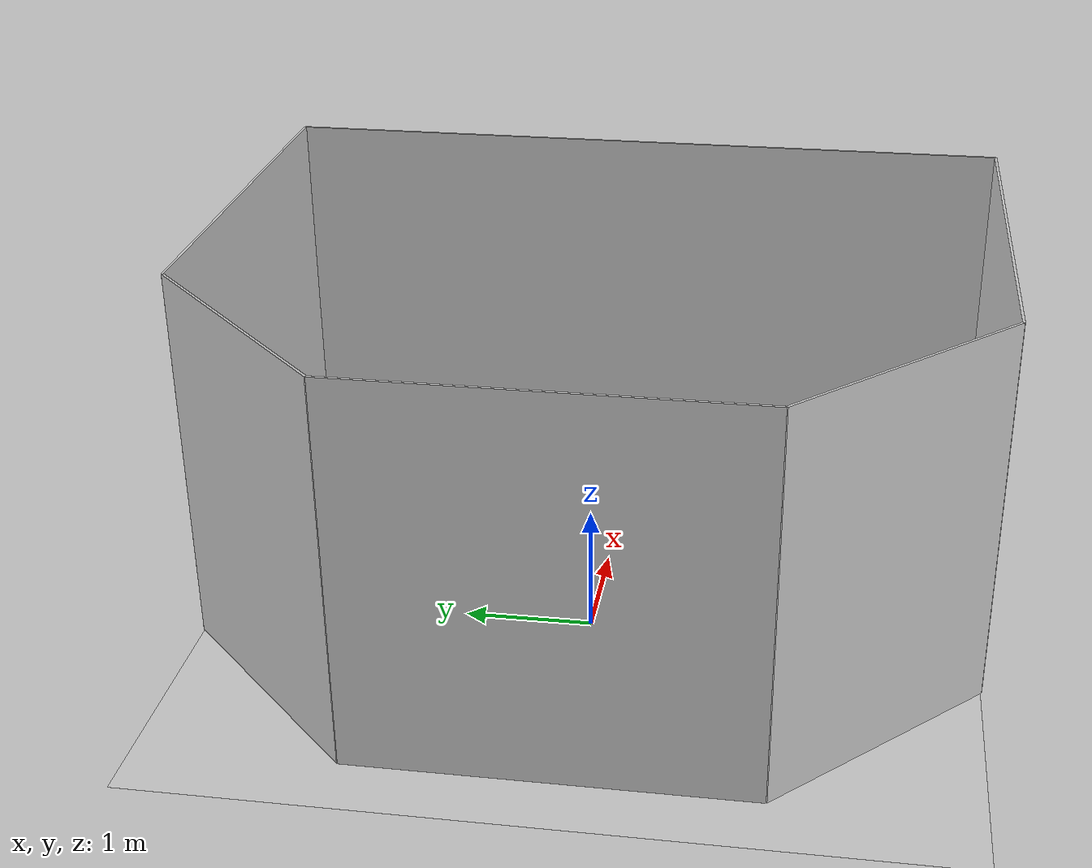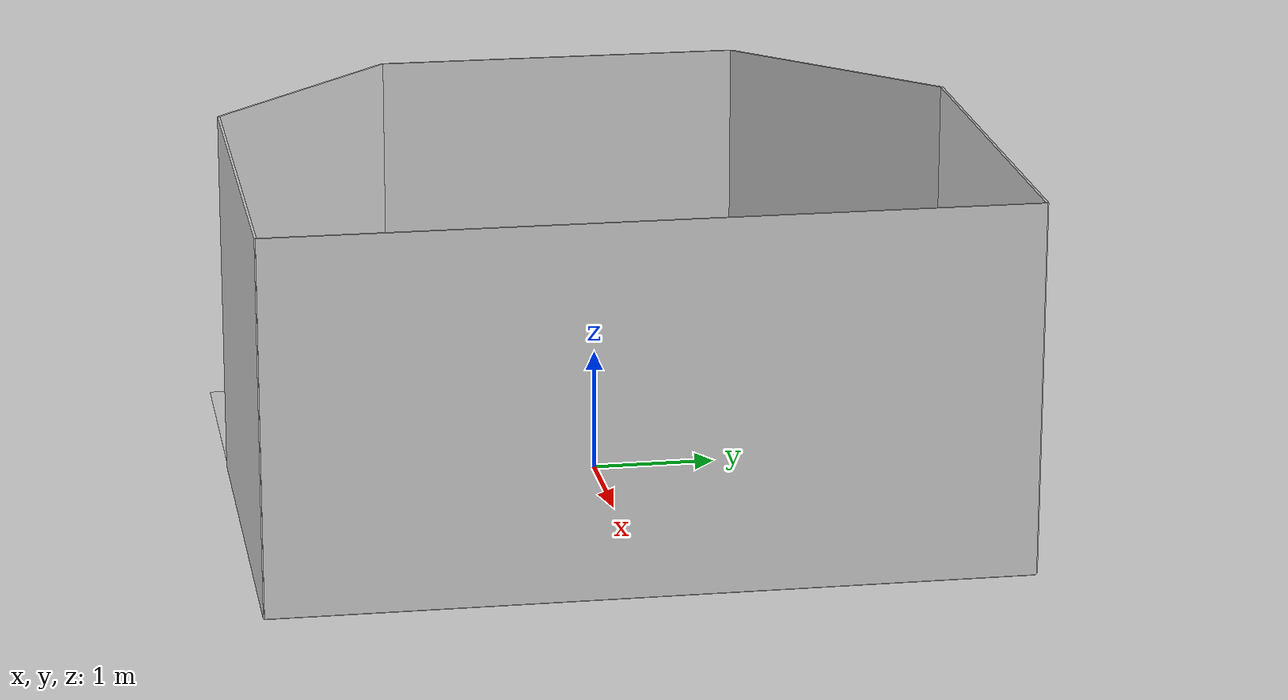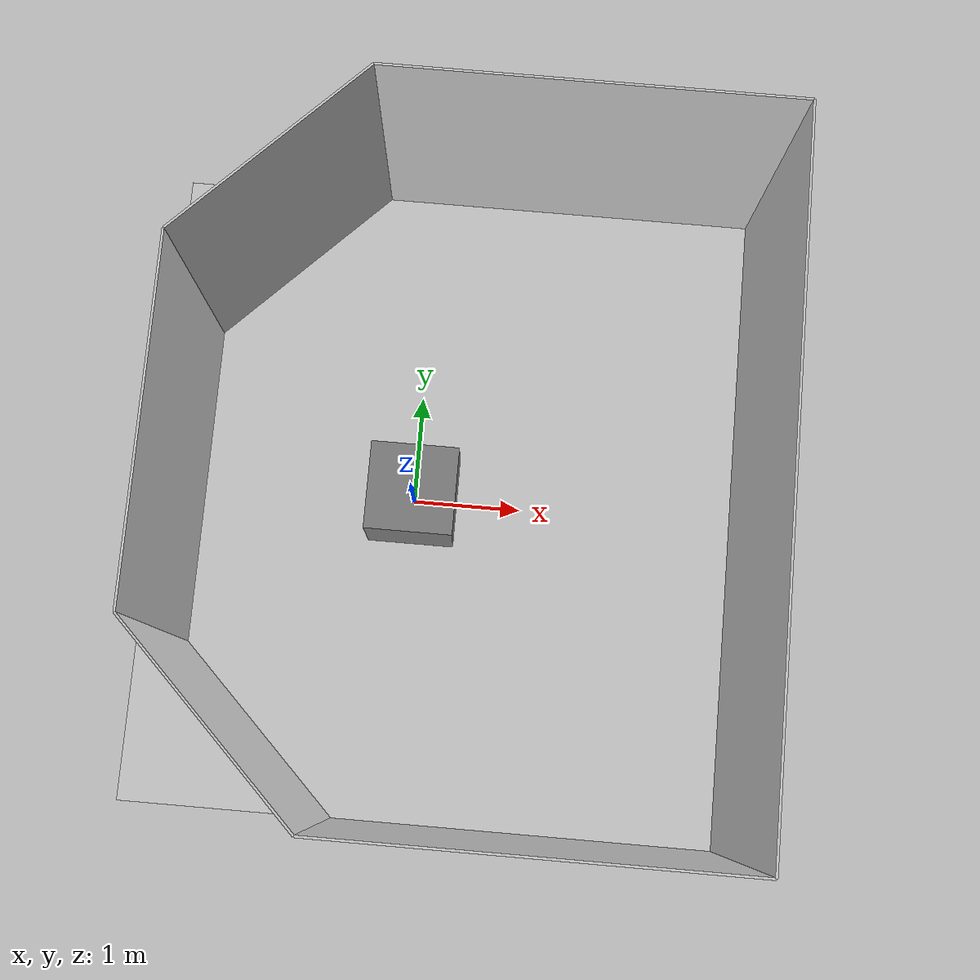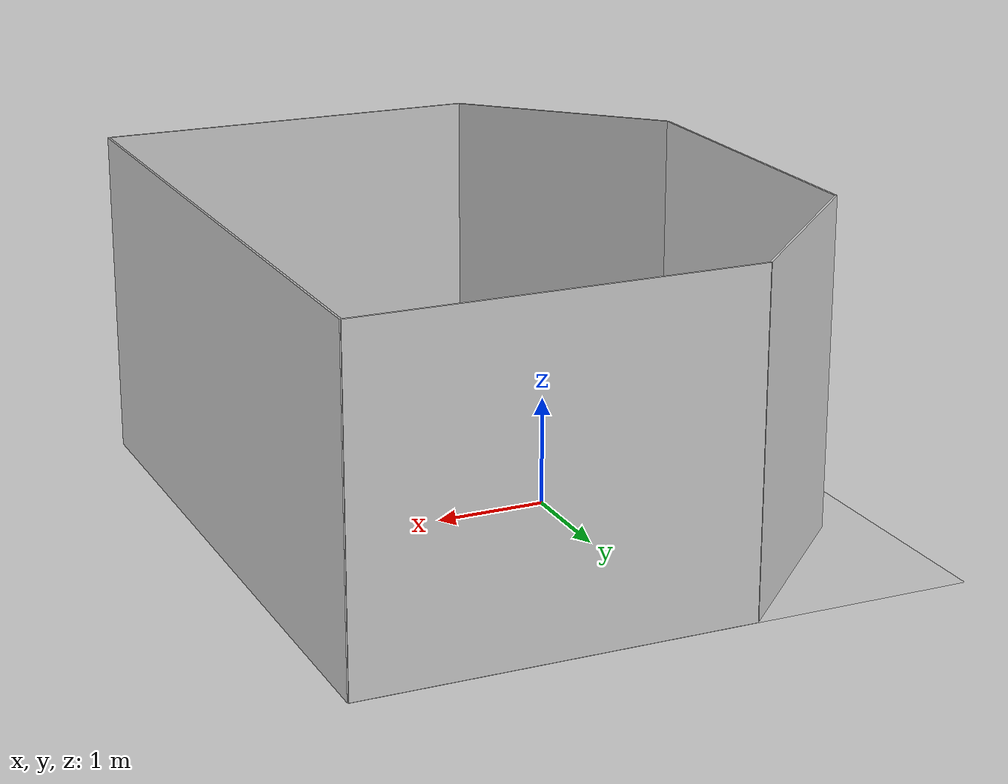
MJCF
<mujoco model="table_arena">
  <asset>
    <texture builtin="gradient" height="256" rgb1=".9 .9 1." rgb2=".2 .3 .4" type="skybox" width="256"/>
    <texture file="../textures/light-gray-floor-tile.png" type="2d" name="texplane"/>
    <material name="floorplane" reflectance="0.01" shininess="0.0" specular="0.0" texrepeat="2 2" texture="texplane" texuniform="true"/>
    <!-- ceramic table texture and material-->
    <texture file="../textures/ceramic.png" type="cube" name="tex-ceramic"/>
    <material name="table_ceramic" reflectance="0.0" shininess="0.0" specular="0.2" texrepeat="1 1" texture="tex-ceramic" />
    <!-- steel legs -->
    <texture file="../textures/steel-brushed.png" type="cube" name="tex-steel-brushed"/>
    <material name="table_legs_metal" reflectance="0.8" shininess="0.8" texrepeat="1 1" texture="tex-steel-brushed" />
    <!-- plaster walls -->
    <texture file="../textures/light-gray-plaster.png" type="2d" name="tex-light-gray-plaster"/>
    <material name="walls_mat" reflectance="0.0" shininess="0.1" specular="0.1" texrepeat="3 3" texture="tex-light-gray-plaster" texuniform="true" />
    <!-- added table texture and material for domain randomization -->
    <texture  name="textable" builtin="flat" height="512" width="512" rgb1="0.5 0.5 0.5" rgb2="0.5 0.5 0.5"/>
    <material name="table_mat" texture="textable" />

  </asset>
  <worldbody>
    <!-- Floor -->
    <geom condim="3" group="1" material="floorplane" name="floor" pos="0 0 0" size="3 3 .125" type="plane"/>
    <!-- Walls (visual only) -->
    <geom pos="-1.25 2.25 1.5" quat="0.6532815 0.6532815 0.2705981 0.2705981" size="1.06 1.5 0.01" type="box" conaffinity="0" contype="0" group="1" name="wall_leftcorner_visual" material="walls_mat"/>
    <geom pos="-1.25 -2.25 1.5" quat="0.6532815 0.6532815 -0.2705981 -0.2705981" size="1.06 1.5 0.01" type="box" conaffinity="0" contype="0" group="1" name="wall_rightcorner_visual" material="walls_mat"/>
    <geom pos="1.25 3 1.5" quat="0.7071 0.7071 0 0" size="1.75 1.5 0.01" type="box" conaffinity="0" contype="0" group="1" name="wall_left_visual" material="walls_mat"/>
    <geom pos="1.25 -3 1.5" quat="0.7071 -0.7071 0 0" size="1.75 1.5 0.01" type="box" conaffinity="0" contype="0" group="1" name="wall_right_visual" material="walls_mat"/>
    <geom pos="-2 0 1.5" quat="0.5 0.5 0.5 0.5" size="1.5 1.5 0.01" type="box" conaffinity="0" contype="0" group="1" name="wall_rear_visual" material="walls_mat"/>
    <geom pos="3 0 1.5" quat="0.5 0.5 -0.5 -0.5" size="3 1.5 0.01" type="box" conaffinity="0" contype="0" group="1" name="wall_front_visual" material="walls_mat"/>
    <!-- Table body -->
    <body name="table" pos="0 0 0.4">
      <geom pos="0 0 0" size="0.4 0.4 0.4" type="box" group="0" name="table_collision" friction="1 0.005 0.0001"/>
      <geom pos="0 0 0" size="0.4 0.4 0.4" type="box" conaffinity="0" contype="0" group="1" name="table_visual" material="table_ceramic"/>
      <site pos="0 0 0.4" name="table_top" size="0.001 0.001 0.001" rgba="0 0 0 0"/>
      <!-- Legs (visual only) -->
      <geom pos="0 0 0" size="0.05 0.1" type="cylinder" conaffinity="0" contype="0" group="1" name="table_leg1_visual" material="table_legs_metal"/>
      <geom pos="0 0 0" size="0.05 0.1" type="cylinder" conaffinity="0" contype="0" group="1" name="table_leg2_visual" material="table_legs_metal"/>
      <geom pos="0 0 0" size="0.05 0.1" type="cylinder" conaffinity="0" contype="0" group="1" name="table_leg3_visual" material="table_legs_metal"/>
      <geom pos="0 0 0" size="0.05 0.1" type="cylinder" conaffinity="0" contype="0" group="1" name="table_leg4_visual" material="table_legs_metal"/>
    </body>
    <light pos="1.0 1.0 1.5" dir="-0.2 -0.2 -1" specular="0.3 0.3 0.3" directional="true" castshadow="false"/>
    <!-- front view -->
    <camera mode="fixed" name="frontview" pos="1.6 0 1.45" quat="0.56 0.43 0.43 0.56"/>
    <!-- bird view -->
    <camera mode="fixed" name="birdview" pos="-0.2 0 3.0" quat="0.7071 0 0 0.7071"/>
    <!-- agent view -->
    <camera mode="fixed" name="agentview" pos="0.5 0 1.35" quat="0.653 0.271 0.271 0.653"/>
    <!-- side view -->
    <camera mode="fixed" name="sideview" pos="-0.05651774593317116 1.2761224129427358 1.4879572214102434" quat="0.009905065491771751 0.006877963156909582 0.5912228352893879 0.806418094001364" />

    <camera name="agentview_1" pos="-0.8305750824263862 -0.4256276155674888 1.5736338814447737" quat="0.8194206953048706 0.3570890724658966 -0.17912238836288452 -0.4110370874404907" />

    <camera name="agentview_2" pos="-0.6938286946932906 -0.43683860831056315 1.4417318632651868" quat="0.8403212428092957 0.38553035259246826 -0.15891146659851074 -0.34637197852134705" />

    <camera name="agentview_3" pos="-0.496903640201576 0.4647419510916371 1.2242543539137358" quat="0.203161358833313 0.1151660829782486 -0.4795105457305908 -0.8458913564682007" />

    <camera name="agentview_4" pos="-0.3660558809373577 -0.5094786578365763 1.8136632047061698" quat="0.9051882028579712 0.3759356737136841 -0.0760418176651001 -0.18309584259986877" />

    <camera name="agentview_5" pos="0.0995783961724398 -0.37950167342385677 1.2969684115091864" quat="0.829046905040741 0.41908615827560425 0.16701126098632812 0.33038607239723206" />

    <camera name="agentview_6" pos="0.33942037004231695 -0.0321687810796982 1.1302738658517606" quat="0.5944809913635254 0.4163977801799774 0.394650399684906 0.5634326934814453" />

    <camera name="agentview_7" pos="-0.8801944476096313 0.5704502827274996 1.1172289819074355" quat="0.31601643562316895 0.24828755855560303 -0.5657169222831726 -0.7200354933738708" />

    <camera name="agentview_8" pos="0.5481716837702797 0.10811372199408217 1.278055322275479" quat="0.5528704524040222 0.3578227162361145 0.4088783264160156 0.631756067276001" />

    <camera name="agentview_9" pos="0.4421458868329946 -0.10662018268069227 1.6200421153815892" quat="0.7003850340843201 0.2907317876815796 0.2499173879623413 0.6020610332489014" />

    <camera name="agentview_10" pos="-1.0067924414294742 0.3175114097265067 1.1869441763830944" quat="0.4483492970466614 0.32147711515426636 -0.4860084056854248 -0.6778134107589722" />

    <camera name="agentview_11" pos="0.7663773182293177 -0.25879408480595933 1.2452651428887096" quat="0.636047899723053 0.46657097339630127 0.363531231880188 0.4955800175666809" />

    <camera name="agentview_12" pos="-0.004691522698562272 -0.612809934164395 1.5720535531009616" quat="0.9020801782608032 0.38444438576698303 0.0768808126449585 0.1803971379995346" />

    <camera name="agentview_13" pos="0.037088593023491094 -0.5489597805526845 1.3568478599599438" quat="0.8617215752601624 0.4440390467643738 0.11244809627532959 0.21822166442871094" />

    <camera name="agentview_14" pos="0.41178529385484963 0.33983652488723054 1.6153373702647307" quat="0.48039376735687256 0.20861920714378357 0.3393278121948242 0.7813810110092163" />

    <camera name="agentview_15" pos="0.3213751817459129 0.5081128691318773 1.4769122010152367" quat="0.3687233030796051 0.18710258603096008 0.4120156764984131 0.8119598031044006" />

    <camera name="agentview_16" pos="-1.2191848575286053 0.4430781328981082 1.3373042834211581" quat="0.4465056359767914 0.30158981680870056 -0.4715261459350586 -0.6980971097946167" />

    <camera name="agentview_17" pos="0.321777050800041 0.19992635675332954 1.4073510736836328" quat="0.5240113735198975 0.25082889199256897 0.35142284631729126 0.7341651916503906" />

    <camera name="agentview_18" pos="-0.7009732946936482 -0.5417948582679847 1.2664504956973677" quat="0.8029621839523315 0.4929913878440857 -0.17526787519454956 -0.2854684889316559" />

    <camera name="agentview_19" pos="0.030935952160815006 0.4045876581395028 1.3464293478480371" quat="0.27916479110717773 0.12698504328727722 0.3940979242324829 0.8663881421089172" />

    <camera name="agentview_20" pos="0.42043387915495134 -0.8081716545418516 1.2318930769619956" quat="0.7543975710868835 0.5597953200340271 0.20427709817886353 0.27528998255729675" />

    <camera name="agentview_21" pos="-0.4547970037282741 -0.5660751743067172 1.1951343642723744" quat="0.83327716588974 0.5276731848716736 -0.08825165033340454 -0.13936270773410797" />

    <camera name="agentview_22" pos="-0.1495416612049484 -0.8755128546814407 1.600431875068066" quat="0.8968684077262878 0.43782931566238403 0.02751004695892334 0.05635295808315277" />

    <camera name="agentview_23" pos="-0.7777530280001386 0.8423104336457894 1.4509356019226562" quat="0.23395699262619019 0.13892945647239685 -0.49132126569747925 -0.8273849487304688" />

    <camera name="agentview_24" pos="-0.01623101038908276 0.6405912036592487 1.5257877668783502" quat="0.16507694125175476 0.07376504689455032 0.4012495279312134 0.8979461789131165" />

    <camera name="agentview_25" pos="0.5495423169422813 -0.7709345045984874 1.2982003816481817" quat="0.74855637550354 0.5333640575408936 0.22859632968902588 0.32082653045654297" />

    <camera name="agentview_26" pos="-0.8285725867949716 0.5933784941903693 1.5818441209667613" quat="0.33674097061157227 0.15995793044567108 -0.39813876152038574 -0.8381555080413818" />

    <camera name="agentview_27" pos="0.5822603128299306 -0.17746641540828412 1.526236253370202" quat="0.6904358863830566 0.35550814867019653 0.2884076237678528 0.560119092464447" />

    <camera name="agentview_28" pos="-0.44950170600939304 0.6545304365887077 1.3005885494540925" quat="0.12143968045711517 0.07054511457681656 -0.4973260164260864 -0.8561206459999084" />

    <camera name="agentview_29" pos="-1.009374317570219 0.24805672704633025 1.488141522105875" quat="0.5220235586166382 0.26526740193367004 -0.3672311305999756 -0.7226797938346863" />

    <camera name="agentview_30" pos="-1.009374317570219 0.24805672704633025 1.488141522105875" quat="0.5220235586166382 0.26526740193367004 -0.3672311305999756 -0.7226797938346863" />

    <camera name="agentview_31" pos="0.7600361810330949 -0.8406636020542283 1.1617235402378017" quat="0.6963656544685364 0.5771232843399048 0.27222806215286255 0.3284744322299957" />

    <camera name="agentview_32" pos="-0.6999553021284528 -0.6650423394730984 1.325309396770533" quat="0.818229079246521 0.49750322103500366 -0.14966726303100586 -0.24615326523780823" />

    <camera name="agentview_33" pos="-0.5301629756137174 0.6636615204000404 1.2474650335429174" quat="0.16209077835083008 0.10308901220560074 -0.5266597867012024 -0.828087329864502" />

    <camera name="agentview_34" pos="-1.0472377812704439 0.22346636434016426 1.726688855664032" quat="0.5567297339439392 0.2313344031572342 -0.30614107847213745 -0.7367590665817261" />

    <camera name="agentview_35" pos="-0.81790822762064 -0.36778078127297176 1.415190095507755" quat="0.7878787517547607 0.3929879367351532 -0.21163111925125122 -0.4242872893810272" />

    <camera name="agentview_36" pos="0.24293450698361385 -0.5338588603628915 1.435937665232594" quat="0.8264738917350769 0.4252970814704895 0.16878026723861694 0.32798829674720764" />

    <camera name="agentview_37" pos="-0.15907998056069875 1.1313122959918815 1.120573567520703" quat="0.03416743874549866 0.028464440256357193 0.639439046382904 0.767554521560669" />

    <camera name="agentview_38" pos="0.4266984390153389 -0.10015566052081853 1.3331141881044961" quat="0.6591615676879883 0.37103646993637085 0.3208463788032532 0.5699962973594666" />

    <camera name="agentview_39" pos="0.13712666734329046 -0.7010453844075127 1.4155218607816733" quat="0.8457496762275696 0.4687790274620056 0.12355309724807739 0.22290875017642975" />

    <camera name="agentview_40" pos="0.34731837021848594 -0.8274862852693251 1.494605242176553" quat="0.8212419152259827 0.47817301750183105 0.15664273500442505 0.2690272033214569" />

    <camera name="agentview_41" pos="0.8551636758217502 0.13370323830761655 1.3551787200952528" quat="0.5487047433853149 0.3733651638031006 0.4208040237426758 0.6184216737747192" />

    <camera name="agentview_42" pos="0.1256854161489442 -1.1381391079072736 1.2865135857376664" quat="0.7947370409965515 0.5847579836845398 0.09638756513595581 0.1309991031885147" />

    <camera name="agentview_43" pos="0.058951349095231476 -1.090864446406042 1.6578630988417542" quat="0.8265427947044373 0.5380751490592957 0.09014737606048584 0.13847629725933075" />

    <camera name="agentview_44" pos="-1.182036622033864 -0.4647812230638167 1.4405830506967803" quat="0.7135205268859863 0.4693378210067749 -0.28587663173675537 -0.43460962176322937" />

    <camera name="agentview_45" pos="0.7400803923413517 -0.14689736191609246 1.7397174002700848" quat="0.6705264449119568 0.32680365443229675 0.29179883003234863 0.5987046360969543" />

    <camera name="agentview_46" pos="0.5714417890182981 1.467099830646738 1.4581339576155885" quat="0.19268688559532166 0.1274002343416214 0.5366101861000061 0.8115975260734558" />

    <camera name="agentview_47" pos="-0.9801213575003076 -0.49816036919286955 1.9623007867355116" quat="0.8654524087905884 0.4070635139942169 -0.12430077791213989 -0.26427415013313293" />

    <camera name="agentview_48" pos="-0.27734813462889635 1.0852950100577277 1.334842177720749" quat="0.05145054683089256 0.04401686042547226 0.6485876441001892 0.7581225037574768" />

    <camera name="agentview_49" pos="-0.40135898270729636 1.0868794666337325 1.6065258555600102" quat="0.13131381571292877 0.06915020942687988 -0.46078550815582275 -0.875015139579773" />

    <camera name="agentview_50" pos="0.8143839884641164 -0.87122754716556 1.2214733993105666" quat="0.6752341985702515 0.56561279296875 0.30401062965393066 0.3629308044910431" />

    <camera name="agentview_51" pos="1.1069863396136703 -0.06429985121336908 1.2281695302445035" quat="0.5510613918304443 0.37256669998168945 0.4182083010673523 0.6185688972473145" />

    <camera name="agentview_52" pos="-0.8719128839953629 0.9211249084225547 1.8113218770589476" quat="0.21491765975952148 0.11794079840183258 -0.46641117334365845 -0.8499180674552917" />

    <camera name="agentview_53" pos="-1.0616040185470708 -0.904772565226827 1.636551712282702" quat="0.8512551188468933 0.40743401646614075 -0.1427714228630066 -0.2982931435108185" />

    <camera name="agentview_54" pos="1.1648448190054166 -0.316242341301633 1.3710213441569181" quat="0.6346742510795593 0.47387903928756714 0.36520957946777344 0.4891311228275299" />

    <camera name="agentview_55" pos="0.7283612054432342 -0.602191525098229 1.4362464102253907" quat="0.7639413475990295 0.4185410141944885 0.2359844446182251 0.43073007464408875" />

    <camera name="agentview_56" pos="-0.9113409813668041 -0.6525064193445076 1.5284814588740456" quat="0.6811249256134033 0.5040356516838074 -0.3158941864967346 -0.4268813729286194" />

    <camera name="agentview_57" pos="-0.6732406712991221 -0.9955702534094126 1.6183095941772836" quat="0.8901130557060242 0.41978171467781067 -0.07568341493606567 -0.16048087179660797" />

    <camera name="agentview_58" pos="-1.0125857409252599 -0.7232443034269399 1.6327252996588342" quat="0.7546828985214233 0.5809711217880249 -0.18595296144485474 -0.24155335128307343" />

    <camera name="agentview_59" pos="-0.6222452980835194 1.0579705732646154 2.2505420266883083" quat="0.17508740723133087 0.08741270005702972 -0.43804121017456055 -0.8773956894874573" />

    <camera name="agentview_60" pos="0.2738259494292649 1.5694894268289536 1.1442353434562678" quat="0.12667040526866913 0.09561275690793991 0.5948211550712585 0.7880358695983887" />

    <camera name="agentview_61" pos="0.6939768951713319 0.3260768903200131 1.7932151564067709" quat="0.6155520677566528 0.31342536211013794 0.3280984163284302 0.6443691849708557" />

    <camera name="agentview_62" pos="-0.391706192216475 -1.1147869182156156 1.2995372781638639" quat="0.8479944467544556 0.4930228888988495 -0.09776532649993896 -0.1681550145149231" />

    <camera name="agentview_63" pos="-0.22776665881389432 0.8449952884542226 1.8656090139454888" quat="0.002236557425931096 0.0010075187310576439 -0.41072553396224976 -0.9117557406425476" />

    <camera name="agentview_64" pos="0.9157980146881954 0.0005746133182090391 1.8281336975023745" quat="0.6672919988632202 0.3216538727283478 0.2916882038116455 0.6051265001296997" />

    <camera name="agentview_65" pos="-1.5547437657043004 -0.43161024964351324 1.6094439961273985" quat="0.7201018333435059 0.5094302296638489 -0.2720750570297241 -0.38458988070487976" />

    <camera name="agentview_66" pos="0.7712216833697849 -1.3376571084878683 2.0410737340613827" quat="0.7770007848739624 0.43449291586875916 0.2223171591758728 0.39756837487220764" />

    <camera name="agentview_67" pos="0.46914618235774197 0.40118360615875326 1.2787186305948426" quat="0.4175061285495758 0.2463836520910263 0.44451773166656494 0.7532514333724976" />

    <camera name="agentview_68" pos="1.0782708480256566 1.1262892767528558 2.343457002096505" quat="0.47510620951652527 0.20075905323028564 0.3334636688232422 0.7891587018966675" />

    <camera name="agentview_69" pos="0.037431778973408984 -0.772008305352005 1.777720260983243" quat="0.9187799096107483 0.39454832673072815 0.005221128463745117 0.012158278375864029" />

    <camera name="agentview_70" pos="-1.0676365344563803 -0.8559953883332908 1.0435650323191257" quat="0.6772292256355286 0.5300260186195374 -0.314525842666626 -0.40187868475914" />

    <camera name="agentview_71" pos="-0.6919225617662199 0.7988619844671947 1.500426655921733" quat="0.30579596757888794 0.24266919493675232 -0.5722927451133728 -0.7211666107177734" />

    <camera name="agentview_72" pos="0.2559635582909923 1.2218944268038396 1.27738682131802" quat="0.008549545891582966 0.006333534140139818 -0.5952268838882446 -0.8034870624542236" />

    <camera name="agentview_73" pos="0.934877819648368 0.28785785082332765 1.215432783199744" quat="0.5025098919868469 0.3304447829723358 0.43896281719207764 0.6675341129302979" />

    <camera name="agentview_74" pos="0.5307564742561388 -0.6979031102441643 1.0317392878253615" quat="0.7020108699798584 0.5939677357673645 0.2537909150123596 0.2999556362628937" />

    <camera name="agentview_75" pos="0.33893845331750355 -1.2018703000859043 1.602727327433421" quat="0.8466134667396545 0.4432013928890228 0.13665562868118286 0.2610427737236023" />

    <camera name="agentview_76" pos="0.0055751964680678095 -0.7734102665453245 1.1723236447578944" quat="0.785114586353302 0.6146416068077087 0.04699063301086426 0.06002340465784073" />

    <camera name="agentview_77" pos="0.025029844556698527 -0.7144551448895955 1.4970937503879436" quat="0.8826579451560974 0.469674676656723 0.008415818214416504 0.015815509483218193" />

    <camera name="agentview_78" pos="-0.6203444250765631 -0.8325710430577148 1.7099953296032007" quat="0.8858424425125122 0.4058951139450073 -0.09363943338394165 -0.2043626457452774" />

    <camera name="agentview_79" pos="0.5368779665459638 -0.35400774910004434 1.6125308726055743" quat="0.7359709143638611 0.3237629234790802 0.23942023515701294 0.5442447066307068" />

    <camera name="agentview_80" pos="-1.3240584506871127 -0.32947356587216303 1.4092053494146102" quat="0.7075135707855225 0.4812803566455841 -0.2910594940185547 -0.42787641286849976" />

    <camera name="agentview_81" pos="-0.5331192626616559 -0.560543363749547 1.3457019292692831" quat="0.7697322964668274 0.4876726269721985 -0.2204614281654358 -0.3479715883731842" />

    <camera name="agentview_82" pos="-0.05779640986393174 -1.1459455389808604 1.9561956887887157" quat="0.8835846781730652 0.4557320475578308 0.04934114217758179 0.09566403925418854" />

    <camera name="agentview_83" pos="-0.51018962070958 -0.4213138229354391 1.491583626824582" quat="0.7556900978088379 0.4626633822917938 -0.24204081296920776 -0.39533668756484985" />

    <camera name="agentview_84" pos="-0.9182116120252224 -0.4810443712813479 1.2294934492421983" quat="0.6743241548538208 0.580417275428772 -0.2978106737136841 -0.34599384665489197" />

    <camera name="agentview_85" pos="-1.4471437758411694 -0.6755453895552612 2.0292878596872295" quat="0.7253085374832153 0.4442991614341736 -0.27468299865722656 -0.4484138488769531" />

    <camera name="agentview_86" pos="0.39049513794958907 0.8563778335613117 1.6103960212001571" quat="0.2864103317260742 0.16246506571769714 0.4658781886100769 0.8212987184524536" />

    <camera name="agentview_87" pos="-0.011490037321958533 0.6349654173148734 1.313464165469219" quat="0.2015983611345291 0.0974879041314125 0.42428910732269287 0.8774011135101318" />

    <camera name="agentview_88" pos="-0.9366415173641254 -0.42150153753389336 1.8724027498755196" quat="0.8632462620735168 0.3729945421218872 -0.13490498065948486 -0.31221988797187805" />

    <camera name="agentview_89" pos="0.40593553723638326 1.2638752338144863 1.7785427706504433" quat="0.23779334127902985 0.14996486902236938 0.5119186639785767 0.8117291331291199" />

    <camera name="agentview_90" pos="1.0750997659613988 0.9831839962635253 2.000683350116986" quat="0.4471418261528015 0.2500096261501312 0.4191211462020874 0.7495977282524109" />

    <camera name="agentview_91" pos="-1.0480228911844085 1.1376831049436404 1.3179284740583987" quat="0.24433082342147827 0.19106046855449677 -0.5856192708015442 -0.7488980293273926" />

    <camera name="agentview_92" pos="-0.671652816858505 0.28670873632083665 0.998531104646797" quat="0.4515935480594635 0.3742687404155731 -0.5168246030807495 -0.6236015558242798" />

    <camera name="agentview_93" pos="-0.31846474951342457 0.7010534315394447 1.6645717536190854" quat="0.14280465245246887 0.06440716236829758 -0.40605801343917847 -0.9003194570541382" />

    <camera name="agentview_94" pos="0.28302751785968794 1.2964080695415916 1.404623214187793" quat="0.05261643975973129 0.04161279648542404 0.6189218163490295 0.7825828194618225" />

    <camera name="agentview_95" pos="0.7806729909398686 -0.27399494706713584 1.4819986633610907" quat="0.7092045545578003 0.4401737153530121 0.29041075706481934 0.4679076671600342" />

    <camera name="agentview_96" pos="0.5716866746957716 -1.1758533139364256 1.760717927197389" quat="0.8333896398544312 0.4295872449874878 0.15932339429855347 0.3090835511684418" />

    <camera name="agentview_97" pos="1.225601323751705 0.0023638379287335407 1.291895481517481" quat="0.5992878079414368 0.4424183666706085 0.39625275135040283 0.5367530584335327" />

    <camera name="agentview_98" pos="-0.045466187340132316 0.5189962694747632 1.410660391233153" quat="0.10469603538513184 0.05455467849969864 -0.4588726758956909 -0.8806238174438477" />

    <camera name="agentview_99" pos="0.15027800888706078 -1.0066276389280824 1.4846084750920234" quat="0.7884445190429688 0.6117152571678162 0.03953433036804199 0.050956085324287415" />

    <camera name="agentview_100" pos="-0.5225356464804789 -0.2561003228104216 1.8348246015242071" quat="0.7889606356620789 0.3509325683116913 -0.20498186349868774 -0.4608362317085266" />

    <camera name="agentview_101" pos="0.9851987895615442 0.688536136326817 1.5162815981550017" quat="0.44896864891052246 0.30789628624916077 0.47441279888153076 0.6917797923088074" />
  </worldbody>
</mujoco>
